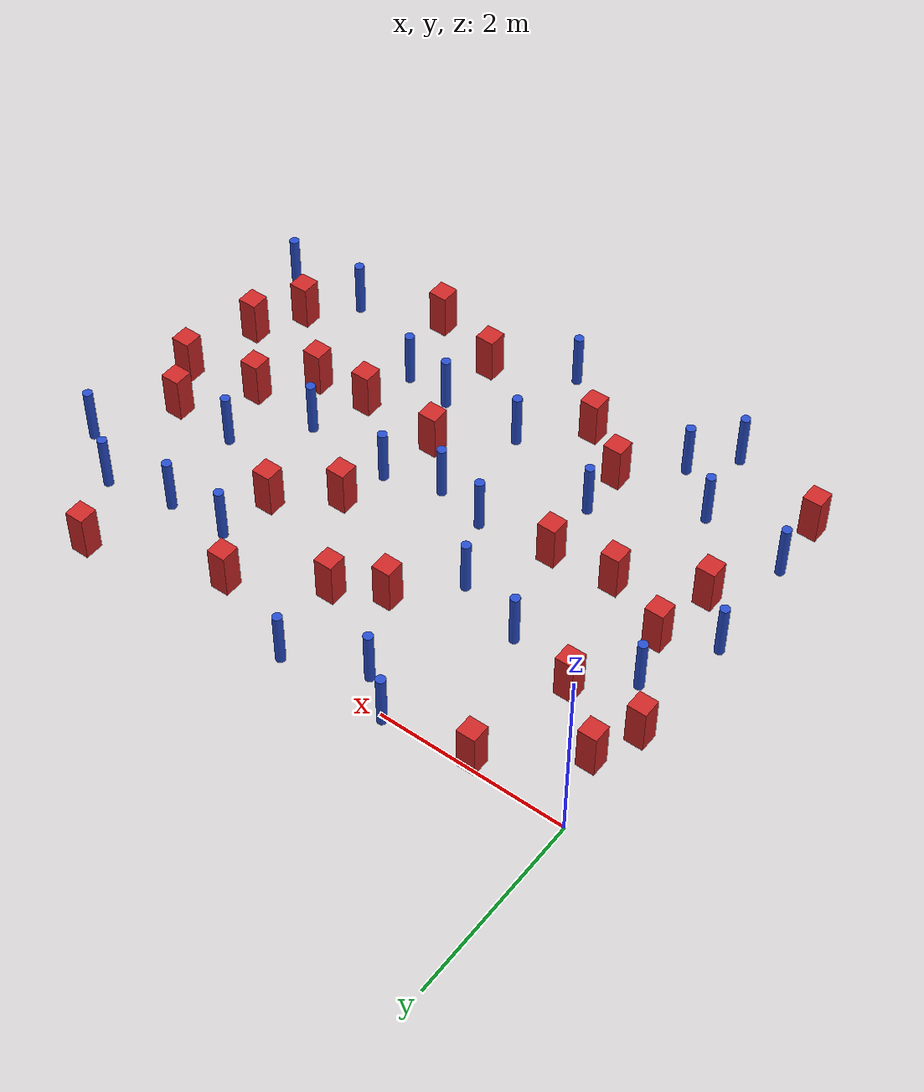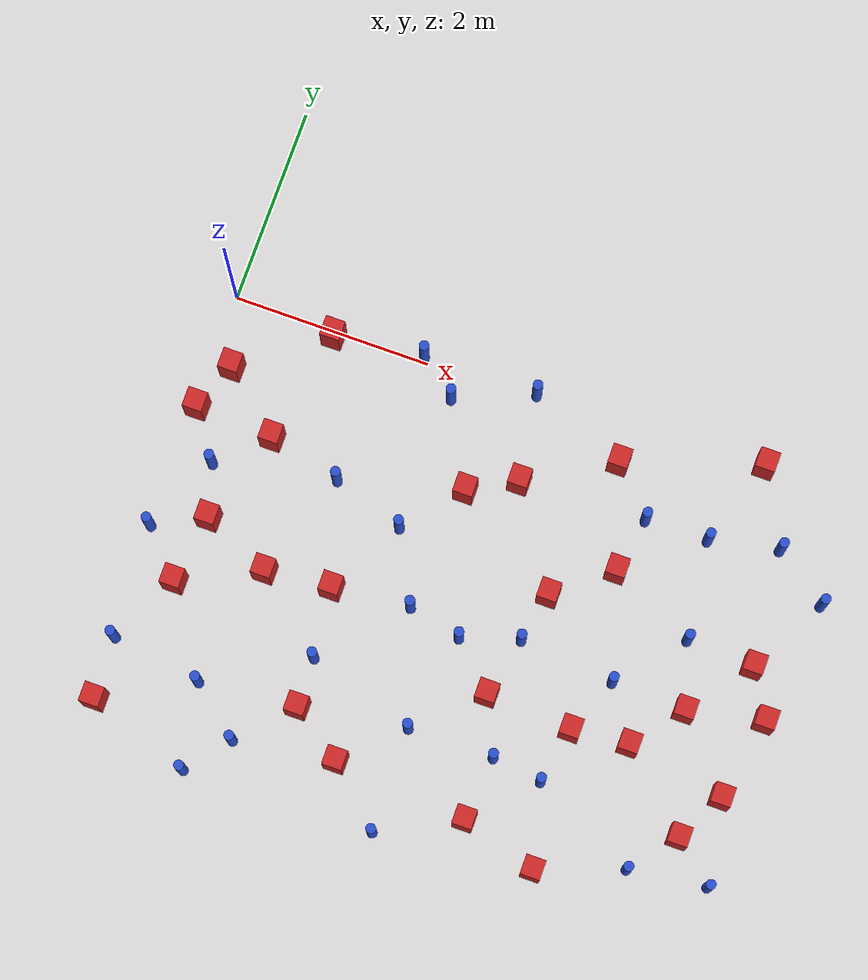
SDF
<sdf version="1.6">
 <model name="dense_48">
  <model name="square_post_obstacle2">
   <static>true</static>
   <pose>3.85165815394 -4.12469330242 8.22691968438e-08 7.2212513382e-06 -7.54495500217e-07 2.29674213826e-05</pose>
   <link name="link">
    <pose>0 0 0.25 0 -0 0</pose>
    <inertial>
     <mass>100</mass>
     <inertia>
      <ixx>0.166667</ixx>
      <ixy>0</ixy>
      <ixz>0</ixz>
      <iyy>0.166667</iyy>
      <iyz>0</iyz>
      <izz>0.166667</izz>
     </inertia>
    </inertial>
    <collision name="collision"><geometry><box><size>.2 .2 .5</size></box></geometry></collision>
    <visual name="visual">
     <geometry><box><size>.2 .2 .5</size></box></geometry>
     <material>
      <script><name>Gazebo/Red</name><uri>file://media/materials/scripts/gazebo.material</uri></script>
     </material>
    </visual>
   </link>
  </model>
  <model name="pole_obstacle5">
   <static>true</static>
   <pose>6.26475696743 -3.95670145354 2.88873142074e-08 -9.90536690067e-09 4.60219948984e-07 -1.20965994963e-07</pose>
   <link name="link">
    <pose>0 0 0.3 0 -0 0</pose>
    <inertial>
     <mass>1</mass>
     <inertia><ixx>0.145833</ixx><ixy>0</ixy><ixz>0</ixz><iyy>0.145833</iyy><iyz>0</iyz><izz>0.125</izz></inertia>
    </inertial>
    <collision name="collision">
     <geometry><cylinder><radius>0.05</radius><length>.6</length></cylinder></geometry>
    </collision>
    <visual name="visual">
     <geometry><cylinder><radius>0.05</radius><length>.6</length></cylinder></geometry>
     <material>
      <script><name>Gazebo/Blue</name><uri>file://media/materials/scripts/gazebo.material</uri></script>
     </material>
    </visual>
   </link>
  </model>
  <model name="square_post_obstacle7">
   <static>true</static>
   <pose>5.98990536124 -1.79606220734 8.22691968438e-08 7.2212513382e-06 -7.54495500217e-07 2.29674213826e-05</pose>
   <link name="link">
    <pose>0 0 0.25 0 -0 0</pose>
    <inertial>
     <mass>100</mass>
     <inertia>
      <ixx>0.166667</ixx>
      <ixy>0</ixy>
      <ixz>0</ixz>
      <iyy>0.166667</iyy>
      <iyz>0</iyz>
      <izz>0.166667</izz>
     </inertia>
    </inertial>
    <collision name="collision"><geometry><box><size>.2 .2 .5</size></box></geometry></collision>
    <visual name="visual">
     <geometry><box><size>.2 .2 .5</size></box></geometry>
     <material>
      <script><name>Gazebo/Red</name><uri>file://media/materials/scripts/gazebo.material</uri></script>
     </material>
    </visual>
   </link>
  </model>
  <model name="square_post_obstacle14">
   <static>true</static>
   <pose>4.10795754205 -0.32786102376 8.22691968438e-08 7.2212513382e-06 -7.54495500217e-07 2.29674213826e-05</pose>
   <link name="link">
    <pose>0 0 0.25 0 -0 0</pose>
    <inertial>
     <mass>100</mass>
     <inertia>
      <ixx>0.166667</ixx>
      <ixy>0</ixy>
      <ixz>0</ixz>
      <iyy>0.166667</iyy>
      <iyz>0</iyz>
      <izz>0.166667</izz>
     </inertia>
    </inertial>
    <collision name="collision"><geometry><box><size>.2 .2 .5</size></box></geometry></collision>
    <visual name="visual">
     <geometry><box><size>.2 .2 .5</size></box></geometry>
     <material>
      <script><name>Gazebo/Red</name><uri>file://media/materials/scripts/gazebo.material</uri></script>
     </material>
    </visual>
   </link>
  </model>
  <model name="pole_obstacle13">
   <static>true</static>
   <pose>1.12881644602 -4.58372194554 2.88873142074e-08 -9.90536689852e-09 4.60219948989e-07 -1.2096599496e-07</pose>
   <link name="link">
    <pose>0 0 0.3 0 -0 0</pose>
    <inertial>
     <mass>1</mass>
     <inertia><ixx>0.145833</ixx><ixy>0</ixy><ixz>0</ixz><iyy>0.145833</iyy><iyz>0</iyz><izz>0.125</izz></inertia>
    </inertial>
    <collision name="collision">
     <geometry><cylinder><radius>0.05</radius><length>.6</length></cylinder></geometry>
    </collision>
    <visual name="visual">
     <geometry><cylinder><radius>0.05</radius><length>.6</length></cylinder></geometry>
     <material>
      <script><name>Gazebo/Blue</name><uri>file://media/materials/scripts/gazebo.material</uri></script>
     </material>
    </visual>
   </link>
  </model>
  <model name="square_post_obstacle33">
   <static>true</static>
   <pose>3.25432993888 -0.835482280666 8.22691968438e-08 7.2212513382e-06 -7.54495500217e-07 2.29674213826e-05</pose>
   <link name="link">
    <pose>0 0 0.25 0 -0 0</pose>
    <inertial>
     <mass>100</mass>
     <inertia>
      <ixx>0.166667</ixx>
      <ixy>0</ixy>
      <ixz>0</ixz>
      <iyy>0.166667</iyy>
      <iyz>0</iyz>
      <izz>0.166667</izz>
     </inertia>
    </inertial>
    <collision name="collision"><geometry><box><size>.2 .2 .5</size></box></geometry></collision>
    <visual name="visual">
     <geometry><box><size>.2 .2 .5</size></box></geometry>
     <material>
      <script><name>Gazebo/Red</name><uri>file://media/materials/scripts/gazebo.material</uri></script>
     </material>
    </visual>
   </link>
  </model>
  <model name="pole_obstacle28">
   <static>true</static>
   <pose>5.87559320399 -0.621601489754 2.88873142074e-08 -9.90536689837e-09 4.60219948989e-07 -1.2096599496e-07</pose>
   <link name="link">
    <pose>0 0 0.3 0 -0 0</pose>
    <inertial>
     <mass>1</mass>
     <inertia><ixx>0.145833</ixx><ixy>0</ixy><ixz>0</ixz><iyy>0.145833</iyy><iyz>0</iyz><izz>0.125</izz></inertia>
    </inertial>
    <collision name="collision">
     <geometry><cylinder><radius>0.05</radius><length>.6</length></cylinder></geometry>
    </collision>
    <visual name="visual">
     <geometry><cylinder><radius>0.05</radius><length>.6</length></cylinder></geometry>
     <material>
      <script><name>Gazebo/Blue</name><uri>file://media/materials/scripts/gazebo.material</uri></script>
     </material>
    </visual>
   </link>
  </model>
  <model name="pole_obstacle35">
   <static>true</static>
   <pose>4.756151242 -2.39537260001 2.88873142074e-08 -9.90536690245e-09 4.6021994898e-07 -1.20965994966e-07</pose>
   <link name="link">
    <pose>0 0 0.3 0 -0 0</pose>
    <inertial>
     <mass>1</mass>
     <inertia><ixx>0.145833</ixx><ixy>0</ixy><ixz>0</ixz><iyy>0.145833</iyy><iyz>0</iyz><izz>0.125</izz></inertia>
    </inertial>
    <collision name="collision">
     <geometry><cylinder><radius>0.05</radius><length>.6</length></cylinder></geometry>
    </collision>
    <visual name="visual">
     <geometry><cylinder><radius>0.05</radius><length>.6</length></cylinder></geometry>
     <material>
      <script><name>Gazebo/Blue</name><uri>file://media/materials/scripts/gazebo.material</uri></script>
     </material>
    </visual>
   </link>
  </model>
  <model name="square_post_obstacle51">
   <static>true</static>
   <pose>0.517012459447 -2.18822573347 8.22691968438e-08 7.2212513382e-06 -7.54495500217e-07 2.29674213826e-05</pose>
   <link name="link">
    <pose>0 0 0.25 0 -0 0</pose>
    <inertial>
     <mass>100</mass>
     <inertia>
      <ixx>0.166667</ixx>
      <ixy>0</ixy>
      <ixz>0</ixz>
      <iyy>0.166667</iyy>
      <iyz>0</iyz>
      <izz>0.166667</izz>
     </inertia>
    </inertial>
    <collision name="collision"><geometry><box><size>.2 .2 .5</size></box></geometry></collision>
    <visual name="visual">
     <geometry><box><size>.2 .2 .5</size></box></geometry>
     <material>
      <script><name>Gazebo/Red</name><uri>file://media/materials/scripts/gazebo.material</uri></script>
     </material>
    </visual>
   </link>
  </model>
  <model name="square_post_obstacle52">
   <static>true</static>
   <pose>5.50467891843 -2.42307064914 8.22691968438e-08 7.2212513382e-06 -7.54495500217e-07 2.29674213826e-05</pose>
   <link name="link">
    <pose>0 0 0.25 0 -0 0</pose>
    <inertial>
     <mass>100</mass>
     <inertia>
      <ixx>0.166667</ixx>
      <ixy>0</ixy>
      <ixz>0</ixz>
      <iyy>0.166667</iyy>
      <iyz>0</iyz>
      <izz>0.166667</izz>
     </inertia>
    </inertial>
    <collision name="collision"><geometry><box><size>.2 .2 .5</size></box></geometry></collision>
    <visual name="visual">
     <geometry><box><size>.2 .2 .5</size></box></geometry>
     <material>
      <script><name>Gazebo/Red</name><uri>file://media/materials/scripts/gazebo.material</uri></script>
     </material>
    </visual>
   </link>
  </model>
  <model name="square_post_obstacle53">
   <static>true</static>
   <pose>1.88276804269 -2.43580149261 8.22691968438e-08 7.2212513382e-06 -7.54495500217e-07 2.29674213826e-05</pose>
   <link name="link">
    <pose>0 0 0.25 0 -0 0</pose>
    <inertial>
     <mass>100</mass>
     <inertia>
      <ixx>0.166667</ixx>
      <ixy>0</ixy>
      <ixz>0</ixz>
      <iyy>0.166667</iyy>
      <iyz>0</iyz>
      <izz>0.166667</izz>
     </inertia>
    </inertial>
    <collision name="collision"><geometry><box><size>.2 .2 .5</size></box></geometry></collision>
    <visual name="visual">
     <geometry><box><size>.2 .2 .5</size></box></geometry>
     <material>
      <script><name>Gazebo/Red</name><uri>file://media/materials/scripts/gazebo.material</uri></script>
     </material>
    </visual>
   </link>
  </model>
  <model name="square_post_obstacle54">
   <static>true</static>
   <pose>0.417672487069 -2.88179623451 8.22691968438e-08 7.22125133819e-06 -7.54495500217e-07 2.29674213826e-05</pose>
   <link name="link">
    <pose>0 0 0.25 0 -0 0</pose>
    <inertial>
     <mass>100</mass>
     <inertia>
      <ixx>0.166667</ixx>
      <ixy>0</ixy>
      <ixz>0</ixz>
      <iyy>0.166667</iyy>
      <iyz>0</iyz>
      <izz>0.166667</izz>
     </inertia>
    </inertial>
    <collision name="collision"><geometry><box><size>.2 .2 .5</size></box></geometry></collision>
    <visual name="visual">
     <geometry><box><size>.2 .2 .5</size></box></geometry>
     <material>
      <script><name>Gazebo/Red</name><uri>file://media/materials/scripts/gazebo.material</uri></script>
     </material>
    </visual>
   </link>
  </model>
  <model name="pole_obstacle53">
   <static>true</static>
   <pose>5.17948409181 -0.767520164973 2.88873142074e-08 -9.90536689837e-09 4.60219948989e-07 -1.2096599496e-07</pose>
   <link name="link">
    <pose>0 0 0.3 0 -0 0</pose>
    <inertial>
     <mass>1</mass>
     <inertia><ixx>0.145833</ixx><ixy>0</ixy><ixz>0</ixz><iyy>0.145833</iyy><iyz>0</iyz><izz>0.125</izz></inertia>
    </inertial>
    <collision name="collision">
     <geometry><cylinder><radius>0.05</radius><length>.6</length></cylinder></geometry>
    </collision>
    <visual name="visual">
     <geometry><cylinder><radius>0.05</radius><length>.6</length></cylinder></geometry>
     <material>
      <script><name>Gazebo/Blue</name><uri>file://media/materials/scripts/gazebo.material</uri></script>
     </material>
    </visual>
   </link>
  </model>
  <model name="pole_obstacle66">
   <static>true</static>
   <pose>1.48015843513 -4.15615399807 2.88873142074e-08 -9.90536689852e-09 4.60219948989e-07 -1.2096599496e-07</pose>
   <link name="link">
    <pose>0 0 0.3 0 -0 0</pose>
    <inertial>
     <mass>1</mass>
     <inertia><ixx>0.145833</ixx><ixy>0</ixy><ixz>0</ixz><iyy>0.145833</iyy><iyz>0</iyz><izz>0.125</izz></inertia>
    </inertial>
    <collision name="collision">
     <geometry><cylinder><radius>0.05</radius><length>.6</length></cylinder></geometry>
    </collision>
    <visual name="visual">
     <geometry><cylinder><radius>0.05</radius><length>.6</length></cylinder></geometry>
     <material>
      <script><name>Gazebo/Blue</name><uri>file://media/materials/scripts/gazebo.material</uri></script>
     </material>
    </visual>
   </link>
  </model>
  <model name="pole_obstacle67">
   <static>true</static>
   <pose>2.34369986629 -0.27188910183 2.88873142074e-08 -9.90536692022e-09 4.60219948938e-07 -1.20965994984e-07</pose>
   <link name="link">
    <pose>0 0 0.3 0 -0 0</pose>
    <inertial>
     <mass>1</mass>
     <inertia><ixx>0.145833</ixx><ixy>0</ixy><ixz>0</ixz><iyy>0.145833</iyy><iyz>0</iyz><izz>0.125</izz></inertia>
    </inertial>
    <collision name="collision">
     <geometry><cylinder><radius>0.05</radius><length>.6</length></cylinder></geometry>
    </collision>
    <visual name="visual">
     <geometry><cylinder><radius>0.05</radius><length>.6</length></cylinder></geometry>
     <material>
      <script><name>Gazebo/Blue</name><uri>file://media/materials/scripts/gazebo.material</uri></script>
     </material>
    </visual>
   </link>
  </model>
  <model name="pole_obstacle75">
   <static>true</static>
   <pose>3.12755101685 0.0467829874637 2.88873142074e-08 -9.905366921e-09 4.60219948936e-07 -1.20965994985e-07</pose>
   <link name="link">
    <pose>0 0 0.3 0 -0 0</pose>
    <inertial>
     <mass>1</mass>
     <inertia><ixx>0.145833</ixx><ixy>0</ixy><ixz>0</ixz><iyy>0.145833</iyy><iyz>0</iyz><izz>0.125</izz></inertia>
    </inertial>
    <collision name="collision">
     <geometry><cylinder><radius>0.05</radius><length>.6</length></cylinder></geometry>
    </collision>
    <visual name="visual">
     <geometry><cylinder><radius>0.05</radius><length>.6</length></cylinder></geometry>
     <material>
      <script><name>Gazebo/Blue</name><uri>file://media/materials/scripts/gazebo.material</uri></script>
     </material>
    </visual>
   </link>
  </model>
  <model name="square_post_obstacle77">
   <static>true</static>
   <pose>0.826728046088 -1.23389034404 8.22691968438e-08 7.2212513382e-06 -7.54495500217e-07 2.29674213826e-05</pose>
   <link name="link">
    <pose>0 0 0.25 0 -0 0</pose>
    <inertial>
     <mass>100</mass>
     <inertia>
      <ixx>0.166667</ixx>
      <ixy>0</ixy>
      <ixz>0</ixz>
      <iyy>0.166667</iyy>
      <iyz>0</iyz>
      <izz>0.166667</izz>
     </inertia>
    </inertial>
    <collision name="collision"><geometry><box><size>.2 .2 .5</size></box></geometry></collision>
    <visual name="visual">
     <geometry><box><size>.2 .2 .5</size></box></geometry>
     <material>
      <script><name>Gazebo/Red</name><uri>file://media/materials/scripts/gazebo.material</uri></script>
     </material>
    </visual>
   </link>
  </model>
  <model name="pole_obstacle81">
   <static>true</static>
   <pose>3.21252510521 -2.48405211228 2.88873142074e-08 -9.90536690232e-09 4.6021994898e-07 -1.20965994968e-07</pose>
   <link name="link">
    <pose>0 0 0.3 0 -0 0</pose>
    <inertial>
     <mass>1</mass>
     <inertia><ixx>0.145833</ixx><ixy>0</ixy><ixz>0</ixz><iyy>0.145833</iyy><iyz>0</iyz><izz>0.125</izz></inertia>
    </inertial>
    <collision name="collision">
     <geometry><cylinder><radius>0.05</radius><length>.6</length></cylinder></geometry>
    </collision>
    <visual name="visual">
     <geometry><cylinder><radius>0.05</radius><length>.6</length></cylinder></geometry>
     <material>
      <script><name>Gazebo/Blue</name><uri>file://media/materials/scripts/gazebo.material</uri></script>
     </material>
    </visual>
   </link>
  </model>
  <model name="pole_obstacle93">
   <static>true</static>
   <pose>-0.0023775373005 -2.44407386912 2.88873142074e-08 -9.90536689491e-09 4.60219948997e-07 -1.20965994954e-07</pose>
   <link name="link">
    <pose>0 0 0.3 0 -0 0</pose>
    <inertial>
     <mass>1</mass>
     <inertia><ixx>0.145833</ixx><ixy>0</ixy><ixz>0</ixz><iyy>0.145833</iyy><iyz>0</iyz><izz>0.125</izz></inertia>
    </inertial>
    <collision name="collision">
     <geometry><cylinder><radius>0.05</radius><length>.6</length></cylinder></geometry>
    </collision>
    <visual name="visual">
     <geometry><cylinder><radius>0.05</radius><length>.6</length></cylinder></geometry>
     <material>
      <script><name>Gazebo/Blue</name><uri>file://media/materials/scripts/gazebo.material</uri></script>
     </material>
    </visual>
   </link>
  </model>
  <model name="pole_obstacle95">
   <static>true</static>
   <pose>6.42505223473 -1.00757508112 2.88873142074e-08 -9.90536689582e-09 4.60219948995e-07 -1.20965994957e-07</pose>
   <link name="link">
    <pose>0 0 0.3 0 -0 0</pose>
    <inertial>
     <mass>1</mass>
     <inertia><ixx>0.145833</ixx><ixy>0</ixy><ixz>0</ixz><iyy>0.145833</iyy><iyz>0</iyz><izz>0.125</izz></inertia>
    </inertial>
    <collision name="collision">
     <geometry><cylinder><radius>0.05</radius><length>.6</length></cylinder></geometry>
    </collision>
    <visual name="visual">
     <geometry><cylinder><radius>0.05</radius><length>.6</length></cylinder></geometry>
     <material>
      <script><name>Gazebo/Blue</name><uri>file://media/materials/scripts/gazebo.material</uri></script>
     </material>
    </visual>
   </link>
  </model>
  <model name="square_post_obstacle84">
   <static>true</static>
   <pose>3.8905847727 -1.79385234788 8.22691968438e-08 7.2212513382e-06 -7.54495500217e-07 2.29674213826e-05</pose>
   <link name="link">
    <pose>0 0 0.25 0 -0 0</pose>
    <inertial>
     <mass>100</mass>
     <inertia>
      <ixx>0.166667</ixx>
      <ixy>0</ixy>
      <ixz>0</ixz>
      <iyy>0.166667</iyy>
      <iyz>0</iyz>
      <izz>0.166667</izz>
     </inertia>
    </inertial>
    <collision name="collision"><geometry><box><size>.2 .2 .5</size></box></geometry></collision>
    <visual name="visual">
     <geometry><box><size>.2 .2 .5</size></box></geometry>
     <material>
      <script><name>Gazebo/Red</name><uri>file://media/materials/scripts/gazebo.material</uri></script>
     </material>
    </visual>
   </link>
  </model>
  <model name="square_post_obstacle89">
   <static>true</static>
   <pose>2.78356375005 -1.09530280312 8.22691968438e-08 7.2212513382e-06 -7.54495500217e-07 2.29674213826e-05</pose>
   <link name="link">
    <pose>0 0 0.25 0 -0 0</pose>
    <inertial>
     <mass>100</mass>
     <inertia>
      <ixx>0.166667</ixx>
      <ixy>0</ixy>
      <ixz>0</ixz>
      <iyy>0.166667</iyy>
      <iyz>0</iyz>
      <izz>0.166667</izz>
     </inertia>
    </inertial>
    <collision name="collision"><geometry><box><size>.2 .2 .5</size></box></geometry></collision>
    <visual name="visual">
     <geometry><box><size>.2 .2 .5</size></box></geometry>
     <material>
      <script><name>Gazebo/Red</name><uri>file://media/materials/scripts/gazebo.material</uri></script>
     </material>
    </visual>
   </link>
  </model>
  <model name="square_post_obstacle99">
   <static>true</static>
   <pose>2.4942034704 -4.00868452656 8.22691968438e-08 7.2212513382e-06 -7.54495500217e-07 2.29674213826e-05</pose>
   <link name="link">
    <pose>0 0 0.25 0 -0 0</pose>
    <inertial>
     <mass>100</mass>
     <inertia>
      <ixx>0.166667</ixx>
      <ixy>0</ixy>
      <ixz>0</ixz>
      <iyy>0.166667</iyy>
      <iyz>0</iyz>
      <izz>0.166667</izz>
     </inertia>
    </inertial>
    <collision name="collision"><geometry><box><size>.2 .2 .5</size></box></geometry></collision>
    <visual name="visual">
     <geometry><box><size>.2 .2 .5</size></box></geometry>
     <material>
      <script><name>Gazebo/Red</name><uri>file://media/materials/scripts/gazebo.material</uri></script>
     </material>
    </visual>
   </link>
  </model>
  <model name="pole_obstacle113">
   <static>true</static>
   <pose>4.53969968772 -0.78127037464 2.88873142074e-08 -9.90536689837e-09 4.60219948989e-07 -1.2096599496e-07</pose>
   <link name="link">
    <pose>0 0 0.3 0 -0 0</pose>
    <inertial>
     <mass>1</mass>
     <inertia><ixx>0.145833</ixx><ixy>0</ixy><ixz>0</ixz><iyy>0.145833</iyy><iyz>0</iyz><izz>0.125</izz></inertia>
    </inertial>
    <collision name="collision">
     <geometry><cylinder><radius>0.05</radius><length>.6</length></cylinder></geometry>
    </collision>
    <visual name="visual">
     <geometry><cylinder><radius>0.05</radius><length>.6</length></cylinder></geometry>
     <material>
      <script><name>Gazebo/Blue</name><uri>file://media/materials/scripts/gazebo.material</uri></script>
     </material>
    </visual>
   </link>
  </model>
  <model name="square_post_obstacle102">
   <static>true</static>
   <pose>4.52714573661 -2.96526096514 8.22691968438e-08 7.2212513382e-06 -7.54495500217e-07 2.29674213826e-05</pose>
   <link name="link">
    <pose>0 0 0.25 0 -0 0</pose>
    <inertial>
     <mass>100</mass>
     <inertia>
      <ixx>0.166667</ixx>
      <ixy>0</ixy>
      <ixz>0</ixz>
      <iyy>0.166667</iyy>
      <iyz>0</iyz>
      <izz>0.166667</izz>
     </inertia>
    </inertial>
    <collision name="collision"><geometry><box><size>.2 .2 .5</size></box></geometry></collision>
    <visual name="visual">
     <geometry><box><size>.2 .2 .5</size></box></geometry>
     <material>
      <script><name>Gazebo/Red</name><uri>file://media/materials/scripts/gazebo.material</uri></script>
     </material>
    </visual>
   </link>
  </model>
  <model name="square_post_obstacle105">
   <static>true</static>
   <pose>5.84259281527 -3.5965846946 8.22691968438e-08 7.2212513382e-06 -7.54495500217e-07 2.29674213826e-05</pose>
   <link name="link">
    <pose>0 0 0.25 0 -0 0</pose>
    <inertial>
     <mass>100</mass>
     <inertia>
      <ixx>0.166667</ixx>
      <ixy>0</ixy>
      <ixz>0</ixz>
      <iyy>0.166667</iyy>
      <iyz>0</iyz>
      <izz>0.166667</izz>
     </inertia>
    </inertial>
    <collision name="collision"><geometry><box><size>.2 .2 .5</size></box></geometry></collision>
    <visual name="visual">
     <geometry><box><size>.2 .2 .5</size></box></geometry>
     <material>
      <script><name>Gazebo/Red</name><uri>file://media/materials/scripts/gazebo.material</uri></script>
     </material>
    </visual>
   </link>
  </model>
  <model name="square_post_obstacle111">
   <static>true</static>
   <pose>0.0930668557078 -4.21701055112 8.22691968438e-08 7.2212513382e-06 -7.54495500217e-07 2.29674213826e-05</pose>
   <link name="link">
    <pose>0 0 0.25 0 -0 0</pose>
    <inertial>
     <mass>100</mass>
     <inertia>
      <ixx>0.166667</ixx>
      <ixy>0</ixy>
      <ixz>0</ixz>
      <iyy>0.166667</iyy>
      <iyz>0</iyz>
      <izz>0.166667</izz>
     </inertia>
    </inertial>
    <collision name="collision"><geometry><box><size>.2 .2 .5</size></box></geometry></collision>
    <visual name="visual">
     <geometry><box><size>.2 .2 .5</size></box></geometry>
     <material>
      <script><name>Gazebo/Red</name><uri>file://media/materials/scripts/gazebo.material</uri></script>
     </material>
    </visual>
   </link>
  </model>
  <model name="pole_obstacle125">
   <static>true</static>
   <pose>1.56628892792 -1.41436922492 2.88873142074e-08 -9.90536689672e-09 4.60219948993e-07 -1.20965994959e-07</pose>
   <link name="link">
    <pose>0 0 0.3 0 -0 0</pose>
    <inertial>
     <mass>1</mass>
     <inertia><ixx>0.145833</ixx><ixy>0</ixy><ixz>0</ixz><iyy>0.145833</iyy><iyz>0</iyz><izz>0.125</izz></inertia>
    </inertial>
    <collision name="collision">
     <geometry><cylinder><radius>0.05</radius><length>.6</length></cylinder></geometry>
    </collision>
    <visual name="visual">
     <geometry><cylinder><radius>0.05</radius><length>.6</length></cylinder></geometry>
     <material>
      <script><name>Gazebo/Blue</name><uri>file://media/materials/scripts/gazebo.material</uri></script>
     </material>
    </visual>
   </link>
  </model>
  <model name="pole_obstacle127">
   <static>true</static>
   <pose>0.0577844461764 -3.5921833487 2.88873142074e-08 -9.9053669241e-09 4.60219948928e-07 -1.20965994988e-07</pose>
   <link name="link">
    <pose>0 0 0.3 0 -0 0</pose>
    <inertial>
     <mass>1</mass>
     <inertia><ixx>0.145833</ixx><ixy>0</ixy><ixz>0</ixz><iyy>0.145833</iyy><iyz>0</iyz><izz>0.125</izz></inertia>
    </inertial>
    <collision name="collision">
     <geometry><cylinder><radius>0.05</radius><length>.6</length></cylinder></geometry>
    </collision>
    <visual name="visual">
     <geometry><cylinder><radius>0.05</radius><length>.6</length></cylinder></geometry>
     <material>
      <script><name>Gazebo/Blue</name><uri>file://media/materials/scripts/gazebo.material</uri></script>
     </material>
    </visual>
   </link>
  </model>
  <model name="pole_obstacle132">
   <static>true</static>
   <pose>5.309895862 -1.76320937144 2.88873142074e-08 -9.90536689445e-09 4.60219948999e-07 -1.20965994956e-07</pose>
   <link name="link">
    <pose>0 0 0.3 0 -0 0</pose>
    <inertial>
     <mass>1</mass>
     <inertia><ixx>0.145833</ixx><ixy>0</ixy><ixz>0</ixz><iyy>0.145833</iyy><iyz>0</iyz><izz>0.125</izz></inertia>
    </inertial>
    <collision name="collision">
     <geometry><cylinder><radius>0.05</radius><length>.6</length></cylinder></geometry>
    </collision>
    <visual name="visual">
     <geometry><cylinder><radius>0.05</radius><length>.6</length></cylinder></geometry>
     <material>
      <script><name>Gazebo/Blue</name><uri>file://media/materials/scripts/gazebo.material</uri></script>
     </material>
    </visual>
   </link>
  </model>
  <model name="pole_obstacle137">
   <static>true</static>
   <pose>3.78920886814 -2.30298608527 2.88873142074e-08 -9.90536690232e-09 4.6021994898e-07 -1.20965994968e-07</pose>
   <link name="link">
    <pose>0 0 0.3 0 -0 0</pose>
    <inertial>
     <mass>1</mass>
     <inertia><ixx>0.145833</ixx><ixy>0</ixy><ixz>0</ixz><iyy>0.145833</iyy><iyz>0</iyz><izz>0.125</izz></inertia>
    </inertial>
    <collision name="collision">
     <geometry><cylinder><radius>0.05</radius><length>.6</length></cylinder></geometry>
    </collision>
    <visual name="visual">
     <geometry><cylinder><radius>0.05</radius><length>.6</length></cylinder></geometry>
     <material>
      <script><name>Gazebo/Blue</name><uri>file://media/materials/scripts/gazebo.material</uri></script>
     </material>
    </visual>
   </link>
  </model>
  <model name="square_post_obstacle125">
   <static>true</static>
   <pose>4.4359464179 -1.35121414048 8.22691968438e-08 7.2212513382e-06 -7.54495500217e-07 2.29674213826e-05</pose>
   <link name="link">
    <pose>0 0 0.25 0 -0 0</pose>
    <inertial>
     <mass>100</mass>
     <inertia>
      <ixx>0.166667</ixx>
      <ixy>0</ixy>
      <ixz>0</ixz>
      <iyy>0.166667</iyy>
      <iyz>0</iyz>
      <izz>0.166667</izz>
     </inertia>
    </inertial>
    <collision name="collision"><geometry><box><size>.2 .2 .5</size></box></geometry></collision>
    <visual name="visual">
     <geometry><box><size>.2 .2 .5</size></box></geometry>
     <material>
      <script><name>Gazebo/Red</name><uri>file://media/materials/scripts/gazebo.material</uri></script>
     </material>
    </visual>
   </link>
  </model>
  <model name="square_post_obstacle131">
   <static>true</static>
   <pose>6.26614889826 -2.26039911819 8.22691968438e-08 7.2212513382e-06 -7.54495500217e-07 2.29674213826e-05</pose>
   <link name="link">
    <pose>0 0 0.25 0 -0 0</pose>
    <inertial>
     <mass>100</mass>
     <inertia>
      <ixx>0.166667</ixx>
      <ixy>0</ixy>
      <ixz>0</ixz>
      <iyy>0.166667</iyy>
      <iyz>0</iyz>
      <izz>0.166667</izz>
     </inertia>
    </inertial>
    <collision name="collision"><geometry><box><size>.2 .2 .5</size></box></geometry></collision>
    <visual name="visual">
     <geometry><box><size>.2 .2 .5</size></box></geometry>
     <material>
      <script><name>Gazebo/Red</name><uri>file://media/materials/scripts/gazebo.material</uri></script>
     </material>
    </visual>
   </link>
  </model>
  <model name="pole_obstacle145">
   <static>true</static>
   <pose>0.35411156609 -1.66402860469 2.88873142074e-08 -9.90536689905e-09 4.60219948988e-07 -1.2096599496e-07</pose>
   <link name="link">
    <pose>0 0 0.3 0 -0 0</pose>
    <inertial>
     <mass>1</mass>
     <inertia><ixx>0.145833</ixx><ixy>0</ixy><ixz>0</ixz><iyy>0.145833</iyy><iyz>0</iyz><izz>0.125</izz></inertia>
    </inertial>
    <collision name="collision">
     <geometry><cylinder><radius>0.05</radius><length>.6</length></cylinder></geometry>
    </collision>
    <visual name="visual">
     <geometry><cylinder><radius>0.05</radius><length>.6</length></cylinder></geometry>
     <material>
      <script><name>Gazebo/Blue</name><uri>file://media/materials/scripts/gazebo.material</uri></script>
     </material>
    </visual>
   </link>
  </model>
  <model name="pole_obstacle148">
   <static>true</static>
   <pose>1.95069933836 -3.13874877879 2.88873142074e-08 -9.90536689941e-09 4.60219948987e-07 -1.20965994961e-07</pose>
   <link name="link">
    <pose>0 0 0.3 0 -0 0</pose>
    <inertial>
     <mass>1</mass>
     <inertia><ixx>0.145833</ixx><ixy>0</ixy><ixz>0</ixz><iyy>0.145833</iyy><iyz>0</iyz><izz>0.125</izz></inertia>
    </inertial>
    <collision name="collision">
     <geometry><cylinder><radius>0.05</radius><length>.6</length></cylinder></geometry>
    </collision>
    <visual name="visual">
     <geometry><cylinder><radius>0.05</radius><length>.6</length></cylinder></geometry>
     <material>
      <script><name>Gazebo/Blue</name><uri>file://media/materials/scripts/gazebo.material</uri></script>
     </material>
    </visual>
   </link>
  </model>
  <model name="pole_obstacle150">
   <static>true</static>
   <pose>3.04504724502 -3.47764768088 2.88873142074e-08 -9.90536690232e-09 4.6021994898e-07 -1.20965994968e-07</pose>
   <link name="link">
    <pose>0 0 0.3 0 -0 0</pose>
    <inertial>
     <mass>1</mass>
     <inertia><ixx>0.145833</ixx><ixy>0</ixy><ixz>0</ixz><iyy>0.145833</iyy><iyz>0</iyz><izz>0.125</izz></inertia>
    </inertial>
    <collision name="collision">
     <geometry><cylinder><radius>0.05</radius><length>.6</length></cylinder></geometry>
    </collision>
    <visual name="visual">
     <geometry><cylinder><radius>0.05</radius><length>.6</length></cylinder></geometry>
     <material>
      <script><name>Gazebo/Blue</name><uri>file://media/materials/scripts/gazebo.material</uri></script>
     </material>
    </visual>
   </link>
  </model>
  <model name="square_post_obstacle144">
   <static>true</static>
   <pose>0.212650637775 -0.702534148182 8.22691968438e-08 7.2212513382e-06 -7.54495500217e-07 2.29674213826e-05</pose>
   <link name="link">
    <pose>0 0 0.25 0 -0 0</pose>
    <inertial>
     <mass>100</mass>
     <inertia>
      <ixx>0.166667</ixx>
      <ixy>0</ixy>
      <ixz>0</ixz>
      <iyy>0.166667</iyy>
      <iyz>0</iyz>
      <izz>0.166667</izz>
     </inertia>
    </inertial>
    <collision name="collision"><geometry><box><size>.2 .2 .5</size></box></geometry></collision>
    <visual name="visual">
     <geometry><box><size>.2 .2 .5</size></box></geometry>
     <material>
      <script><name>Gazebo/Red</name><uri>file://media/materials/scripts/gazebo.material</uri></script>
     </material>
    </visual>
   </link>
  </model>
  <model name="square_post_obstacle151">
   <static>true</static>
   <pose>0.0244621076462 -1.18309111799 8.22691968438e-08 7.2212513382e-06 -7.54495500217e-07 2.29674213826e-05</pose>
   <link name="link">
    <pose>0 0 0.25 0 -0 0</pose>
    <inertial>
     <mass>100</mass>
     <inertia>
      <ixx>0.166667</ixx>
      <ixy>0</ixy>
      <ixz>0</ixz>
      <iyy>0.166667</iyy>
      <iyz>0</iyz>
      <izz>0.166667</izz>
     </inertia>
    </inertial>
    <collision name="collision"><geometry><box><size>.2 .2 .5</size></box></geometry></collision>
    <visual name="visual">
     <geometry><box><size>.2 .2 .5</size></box></geometry>
     <material>
      <script><name>Gazebo/Red</name><uri>file://media/materials/scripts/gazebo.material</uri></script>
     </material>
    </visual>
   </link>
  </model>
  <model name="pole_obstacle162">
   <static>true</static>
   <pose>3.05500079615 -4.53784775167 2.88873142074e-08 -9.90536689859e-09 4.60219948989e-07 -1.20965994961e-07</pose>
   <link name="link">
    <pose>0 0 0.3 0 -0 0</pose>
    <inertial>
     <mass>1</mass>
     <inertia><ixx>0.145833</ixx><ixy>0</ixy><ixz>0</ixz><iyy>0.145833</iyy><iyz>0</iyz><izz>0.125</izz></inertia>
    </inertial>
    <collision name="collision">
     <geometry><cylinder><radius>0.05</radius><length>.6</length></cylinder></geometry>
    </collision>
    <visual name="visual">
     <geometry><cylinder><radius>0.05</radius><length>.6</length></cylinder></geometry>
     <material>
      <script><name>Gazebo/Blue</name><uri>file://media/materials/scripts/gazebo.material</uri></script>
     </material>
    </visual>
   </link>
  </model>
  <model name="pole_obstacle165">
   <static>true</static>
   <pose>1.95491134205 0.0426748100546 2.88873142074e-08 -9.90536691003e-09 4.60219948962e-07 -1.20965994981e-07</pose>
   <link name="link">
    <pose>0 0 0.3 0 -0 0</pose>
    <inertial>
     <mass>1</mass>
     <inertia><ixx>0.145833</ixx><ixy>0</ixy><ixz>0</ixz><iyy>0.145833</iyy><iyz>0</iyz><izz>0.125</izz></inertia>
    </inertial>
    <collision name="collision">
     <geometry><cylinder><radius>0.05</radius><length>.6</length></cylinder></geometry>
    </collision>
    <visual name="visual">
     <geometry><cylinder><radius>0.05</radius><length>.6</length></cylinder></geometry>
     <material>
      <script><name>Gazebo/Blue</name><uri>file://media/materials/scripts/gazebo.material</uri></script>
     </material>
    </visual>
   </link>
  </model>
  <model name="square_post_obstacle163">
   <static>true</static>
   <pose>1.2109420744 -2.49696529483 8.22691968438e-08 7.2212513382e-06 -7.54495500217e-07 2.29674213826e-05</pose>
   <link name="link">
    <pose>0 0 0.25 0 -0 0</pose>
    <inertial>
     <mass>100</mass>
     <inertia>
      <ixx>0.166667</ixx>
      <ixy>0</ixy>
      <ixz>0</ixz>
      <iyy>0.166667</iyy>
      <iyz>0</iyz>
      <izz>0.166667</izz>
     </inertia>
    </inertial>
    <collision name="collision"><geometry><box><size>.2 .2 .5</size></box></geometry></collision>
    <visual name="visual">
     <geometry><box><size>.2 .2 .5</size></box></geometry>
     <material>
      <script><name>Gazebo/Red</name><uri>file://media/materials/scripts/gazebo.material</uri></script>
     </material>
    </visual>
   </link>
  </model>
  <model name="pole_obstacle173">
   <static>true</static>
   <pose>0.975182292199 -3.73265911353 2.88873142074e-08 -9.90536689802e-09 4.6021994899e-07 -1.2096599496e-07</pose>
   <link name="link">
    <pose>0 0 0.3 0 -0 0</pose>
    <inertial>
     <mass>1</mass>
     <inertia><ixx>0.145833</ixx><ixy>0</ixy><ixz>0</ixz><iyy>0.145833</iyy><iyz>0</iyz><izz>0.125</izz></inertia>
    </inertial>
    <collision name="collision">
     <geometry><cylinder><radius>0.05</radius><length>.6</length></cylinder></geometry>
    </collision>
    <visual name="visual">
     <geometry><cylinder><radius>0.05</radius><length>.6</length></cylinder></geometry>
     <material>
      <script><name>Gazebo/Blue</name><uri>file://media/materials/scripts/gazebo.material</uri></script>
     </material>
    </visual>
   </link>
  </model>
  <model name="pole_obstacle176">
   <static>true</static>
   <pose>4.41981229369 -3.53766775524 2.88873142074e-08 -9.90536690245e-09 4.6021994898e-07 -1.20965994966e-07</pose>
   <link name="link">
    <pose>0 0 0.3 0 -0 0</pose>
    <inertial>
     <mass>1</mass>
     <inertia><ixx>0.145833</ixx><ixy>0</ixy><ixz>0</ixz><iyy>0.145833</iyy><iyz>0</iyz><izz>0.125</izz></inertia>
    </inertial>
    <collision name="collision">
     <geometry><cylinder><radius>0.05</radius><length>.6</length></cylinder></geometry>
    </collision>
    <visual name="visual">
     <geometry><cylinder><radius>0.05</radius><length>.6</length></cylinder></geometry>
     <material>
      <script><name>Gazebo/Blue</name><uri>file://media/materials/scripts/gazebo.material</uri></script>
     </material>
    </visual>
   </link>
  </model>
  <model name="square_post_obstacle166">
   <static>true</static>
   <pose>1.96876623187 -3.64040600259 8.22691968438e-08 7.2212513382e-06 -7.54495500217e-07 2.29674213826e-05</pose>
   <link name="link">
    <pose>0 0 0.25 0 -0 0</pose>
    <inertial>
     <mass>100</mass>
     <inertia>
      <ixx>0.166667</ixx>
      <ixy>0</ixy>
      <ixz>0</ixz>
      <iyy>0.166667</iyy>
      <iyz>0</iyz>
      <izz>0.166667</izz>
     </inertia>
    </inertial>
    <collision name="collision"><geometry><box><size>.2 .2 .5</size></box></geometry></collision>
    <visual name="visual">
     <geometry><box><size>.2 .2 .5</size></box></geometry>
     <material>
      <script><name>Gazebo/Red</name><uri>file://media/materials/scripts/gazebo.material</uri></script>
     </material>
    </visual>
   </link>
  </model>
  <model name="square_post_obstacle175">
   <static>true</static>
   <pose>1.04313172166 -0.0697749784944 8.22691968438e-08 7.2212513382e-06 -7.54495500217e-07 2.29674213826e-05</pose>
   <link name="link">
    <pose>0 0 0.25 0 -0 0</pose>
    <inertial>
     <mass>100</mass>
     <inertia>
      <ixx>0.166667</ixx>
      <ixy>0</ixy>
      <ixz>0</ixz>
      <iyy>0.166667</iyy>
      <iyz>0</iyz>
      <izz>0.166667</izz>
     </inertia>
    </inertial>
    <collision name="collision"><geometry><box><size>.2 .2 .5</size></box></geometry></collision>
    <visual name="visual">
     <geometry><box><size>.2 .2 .5</size></box></geometry>
     <material>
      <script><name>Gazebo/Red</name><uri>file://media/materials/scripts/gazebo.material</uri></script>
     </material>
    </visual>
   </link>
  </model>
  <model name="square_post_obstacle180">
   <static>true</static>
   <pose>3.65167283184 -2.91243061652 8.22691968438e-08 7.2212513382e-06 -7.54495500217e-07 2.29674213826e-05</pose>
   <link name="link">
    <pose>0 0 0.25 0 -0 0</pose>
    <inertial>
     <mass>100</mass>
     <inertia>
      <ixx>0.166667</ixx>
      <ixy>0</ixy>
      <ixz>0</ixz>
      <iyy>0.166667</iyy>
      <iyz>0</iyz>
      <izz>0.166667</izz>
     </inertia>
    </inertial>
    <collision name="collision"><geometry><box><size>.2 .2 .5</size></box></geometry></collision>
    <visual name="visual">
     <geometry><box><size>.2 .2 .5</size></box></geometry>
     <material>
      <script><name>Gazebo/Red</name><uri>file://media/materials/scripts/gazebo.material</uri></script>
     </material>
    </visual>
   </link>
  </model>
  <model name="square_post_obstacle187">
   <static>true</static>
   <pose>5.10520952193 -2.91314823976 8.22691968438e-08 7.2212513382e-06 -7.54495500217e-07 2.29674213826e-05</pose>
   <link name="link">
    <pose>0 0 0.25 0 -0 0</pose>
    <inertial>
     <mass>100</mass>
     <inertia>
      <ixx>0.166667</ixx>
      <ixy>0</ixy>
      <ixz>0</ixz>
      <iyy>0.166667</iyy>
      <iyz>0</iyz>
      <izz>0.166667</izz>
     </inertia>
    </inertial>
    <collision name="collision"><geometry><box><size>.2 .2 .5</size></box></geometry></collision>
    <visual name="visual">
     <geometry><box><size>.2 .2 .5</size></box></geometry>
     <material>
      <script><name>Gazebo/Red</name><uri>file://media/materials/scripts/gazebo.material</uri></script>
     </material>
    </visual>
   </link>
  </model>
  <model name="square_post_obstacle192">
   <static>true</static>
   <pose>6.10555177317 -3.09945006793 8.22691968438e-08 7.2212513382e-06 -7.54495500217e-07 2.29674213826e-05</pose>
   <link name="link">
    <pose>0 0 0.25 0 -0 0</pose>
    <inertial>
     <mass>100</mass>
     <inertia>
      <ixx>0.166667</ixx>
      <ixy>0</ixy>
      <ixz>0</ixz>
      <iyy>0.166667</iyy>
      <iyz>0</iyz>
      <izz>0.166667</izz>
     </inertia>
    </inertial>
    <collision name="collision"><geometry><box><size>.2 .2 .5</size></box></geometry></collision>
    <visual name="visual">
     <geometry><box><size>.2 .2 .5</size></box></geometry>
     <material>
      <script><name>Gazebo/Red</name><uri>file://media/materials/scripts/gazebo.material</uri></script>
     </material>
    </visual>
   </link>
  </model>
  <model name="square_post_obstacle193">
   <static>true</static>
   <pose>5.46943510062 0.117976384554 8.22691968438e-08 7.2212513382e-06 -7.54495500217e-07 2.29674213826e-05</pose>
   <link name="link">
    <pose>0 0 0.25 0 -0 0</pose>
    <inertial>
     <mass>100</mass>
     <inertia>
      <ixx>0.166667</ixx>
      <ixy>0</ixy>
      <ixz>0</ixz>
      <iyy>0.166667</iyy>
      <iyz>0</iyz>
      <izz>0.166667</izz>
     </inertia>
    </inertial>
    <collision name="collision"><geometry><box><size>.2 .2 .5</size></box></geometry></collision>
    <visual name="visual">
     <geometry><box><size>.2 .2 .5</size></box></geometry>
     <material>
      <script><name>Gazebo/Red</name><uri>file://media/materials/scripts/gazebo.material</uri></script>
     </material>
    </visual>
   </link>
  </model>
  <model name="pole_obstacle189">
   <static>true</static>
   <pose>3.91364805777 -3.47344234898 2.88873142074e-08 -9.90536690232e-09 4.6021994898e-07 -1.20965994968e-07</pose>
   <link name="link">
    <pose>0 0 0.3 0 -0 0</pose>
    <inertial>
     <mass>1</mass>
     <inertia><ixx>0.145833</ixx><ixy>0</ixy><ixz>0</ixz><iyy>0.145833</iyy><iyz>0</iyz><izz>0.125</izz></inertia>
    </inertial>
    <collision name="collision">
     <geometry><cylinder><radius>0.05</radius><length>.6</length></cylinder></geometry>
    </collision>
    <visual name="visual">
     <geometry><cylinder><radius>0.05</radius><length>.6</length></cylinder></geometry>
     <material>
      <script><name>Gazebo/Blue</name><uri>file://media/materials/scripts/gazebo.material</uri></script>
     </material>
    </visual>
   </link>
  </model>
  <model name="pole_obstacle207">
   <static>true</static>
   <pose>2.66765945719 -2.35688308799 2.88873142074e-08 -9.90536690232e-09 4.6021994898e-07 -1.20965994968e-07</pose>
   <link name="link">
    <pose>0 0 0.3 0 -0 0</pose>
    <inertial>
     <mass>1</mass>
     <inertia><ixx>0.145833</ixx><ixy>0</ixy><ixz>0</ixz><iyy>0.145833</iyy><iyz>0</iyz><izz>0.125</izz></inertia>
    </inertial>
    <collision name="collision">
     <geometry><cylinder><radius>0.05</radius><length>.6</length></cylinder></geometry>
    </collision>
    <visual name="visual">
     <geometry><cylinder><radius>0.05</radius><length>.6</length></cylinder></geometry>
     <material>
      <script><name>Gazebo/Blue</name><uri>file://media/materials/scripts/gazebo.material</uri></script>
     </material>
    </visual>
   </link>
  </model>
  <model name="pole_obstacle210">
   <static>true</static>
   <pose>5.47673551122 -4.0548783929 2.88873142074e-08 -9.90536690842e-09 4.60219948965e-07 -1.20965994976e-07</pose>
   <link name="link">
    <pose>0 0 0.3 0 -0 0</pose>
    <inertial>
     <mass>1</mass>
     <inertia><ixx>0.145833</ixx><ixy>0</ixy><ixz>0</ixz><iyy>0.145833</iyy><iyz>0</iyz><izz>0.125</izz></inertia>
    </inertial>
    <collision name="collision">
     <geometry><cylinder><radius>0.05</radius><length>.6</length></cylinder></geometry>
    </collision>
    <visual name="visual">
     <geometry><cylinder><radius>0.05</radius><length>.6</length></cylinder></geometry>
     <material>
      <script><name>Gazebo/Blue</name><uri>file://media/materials/scripts/gazebo.material</uri></script>
     </material>
    </visual>
   </link>
  </model>
  <model name="pole_obstacle212">
   <static>true</static>
   <pose>2.29974872236 -1.65459632294 2.88873142074e-08 -9.90536689395e-09 4.60219949e-07 -1.20965994953e-07</pose>
   <link name="link">
    <pose>0 0 0.3 0 -0 0</pose>
    <inertial>
     <mass>1</mass>
     <inertia><ixx>0.145833</ixx><ixy>0</ixy><ixz>0</ixz><iyy>0.145833</iyy><iyz>0</iyz><izz>0.125</izz></inertia>
    </inertial>
    <collision name="collision">
     <geometry><cylinder><radius>0.05</radius><length>.6</length></cylinder></geometry>
    </collision>
    <visual name="visual">
     <geometry><cylinder><radius>0.05</radius><length>.6</length></cylinder></geometry>
     <material>
      <script><name>Gazebo/Blue</name><uri>file://media/materials/scripts/gazebo.material</uri></script>
     </material>
    </visual>
   </link>
  </model>
  <model name="square_post_obstacle215">
   <static>true</static>
   <pose>4.62491003262 -4.35882003534 8.22691968438e-08 7.2212513382e-06 -7.54495500217e-07 2.29674213826e-05</pose>
   <link name="link">
    <pose>0 0 0.25 0 -0 0</pose>
    <inertial>
     <mass>100</mass>
     <inertia>
      <ixx>0.166667</ixx>
      <ixy>0</ixy>
      <ixz>0</ixz>
      <iyy>0.166667</iyy>
      <iyz>0</iyz>
      <izz>0.166667</izz>
     </inertia>
    </inertial>
    <collision name="collision"><geometry><box><size>.2 .2 .5</size></box></geometry></collision>
    <visual name="visual">
     <geometry><box><size>.2 .2 .5</size></box></geometry>
     <material>
      <script><name>Gazebo/Red</name><uri>file://media/materials/scripts/gazebo.material</uri></script>
     </material>
    </visual>
   </link>
  </model>
 </model>
</sdf>
